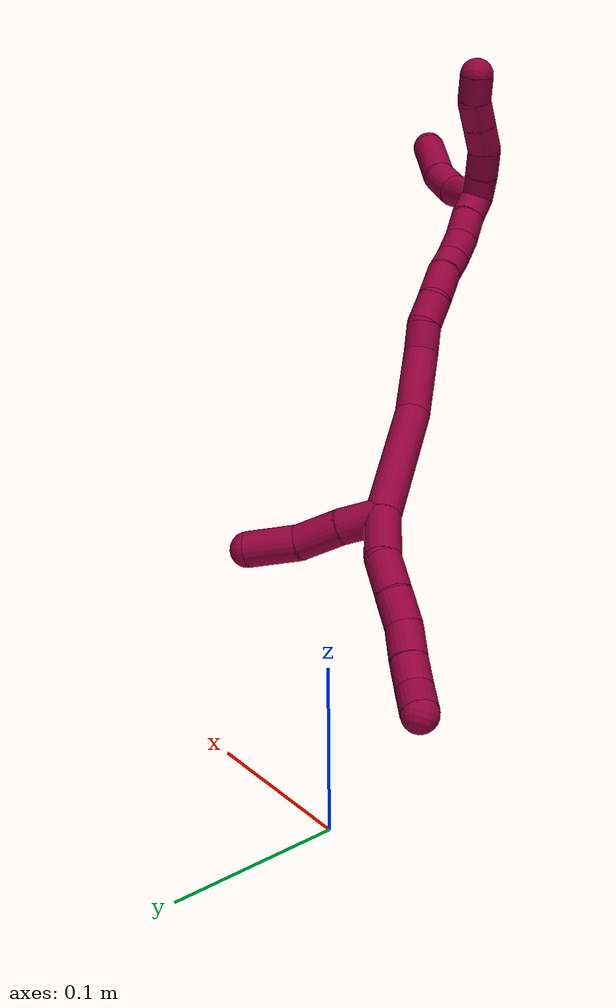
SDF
<sdf version="1.7">
 <world name="default">
  <model name="8">
   <static>0</static>
   <link name="8">
    <collision name="collision-cylinder-e_1_2_8">
     <pose>-0.00708 0.001627 -0.016108 -3.04095 -0.412233 2.66886</pose>
     <geometry><cylinder><radius>0.0125</radius><length>0.03534</length></cylinder></geometry>
     <surface>
      <friction><ode><mu>1.16</mu><mu2>1.16</mu2><slip1>0</slip1><slip2>0</slip2></ode></friction>
      <contact><ode><kp>1e+06</kp><kd>1</kd><max_vel>0</max_vel><min_depth>0.001</min_depth></ode></contact>
     </surface>
    </collision>
    <visual name="visual-cylinder-e_1_2_8">
     <pose>-0.00708 0.001627 -0.016108 -3.04095 -0.412233 2.66886</pose>
     <geometry><cylinder><radius>0.0125</radius><length>0.03534</length></cylinder></geometry>
     <material><ambient>0.584314 0 0.227451 1</ambient></material>
    </visual>
    <collision name="collision-cylinder-e_2_8_9">
     <pose>-0.020189 0.000476 -0.043799 2.90626 -0.468607 -2.2219</pose>
     <geometry><cylinder><radius>0.0125</radius><length>0.026701</length></cylinder></geometry>
     <surface>
      <friction><ode><mu>1.16</mu><mu2>1.16</mu2><slip1>0</slip1><slip2>0</slip2></ode></friction>
      <contact><ode><kp>1e+06</kp><kd>1</kd><max_vel>0</max_vel><min_depth>0.001</min_depth></ode></contact>
     </surface>
    </collision>
    <visual name="visual-cylinder-e_2_8_9">
     <pose>-0.020189 0.000476 -0.043799 2.90626 -0.468607 -2.2219</pose>
     <geometry><cylinder><radius>0.0125</radius><length>0.026701</length></cylinder></geometry>
     <material><ambient>0.584314 0 0.227451 1</ambient></material>
    </visual>
    <collision name="collision-cylinder-e_3_9_10">
     <pose>-0.030769 -0.005724 -0.065817 2.8247 -0.392783 -1.78832</pose>
     <geometry><cylinder><radius>0.0125</radius><length>0.023774</length></cylinder></geometry>
     <surface>
      <friction><ode><mu>1.16</mu><mu2>1.16</mu2><slip1>0</slip1><slip2>0</slip2></ode></friction>
      <contact><ode><kp>1e+06</kp><kd>1</kd><max_vel>0</max_vel><min_depth>0.001</min_depth></ode></contact>
     </surface>
    </collision>
    <visual name="visual-cylinder-e_3_9_10">
     <pose>-0.030769 -0.005724 -0.065817 2.8247 -0.392783 -1.78832</pose>
     <geometry><cylinder><radius>0.0125</radius><length>0.023774</length></cylinder></geometry>
     <material><ambient>0.584314 0 0.227451 1</ambient></material>
    </visual>
    <collision name="collision-cylinder-e_4_10_11">
     <pose>-0.040214 -0.009722 -0.08693 3.08763 -0.4293 -2.89526</pose>
     <geometry><cylinder><radius>0.0125</radius><length>0.023522</length></cylinder></geometry>
     <surface>
      <friction><ode><mu>1.16</mu><mu2>1.16</mu2><slip1>0</slip1><slip2>0</slip2></ode></friction>
      <contact><ode><kp>1e+06</kp><kd>1</kd><max_vel>0</max_vel><min_depth>0.001</min_depth></ode></contact>
     </surface>
    </collision>
    <visual name="visual-cylinder-e_4_10_11">
     <pose>-0.040214 -0.009722 -0.08693 3.08763 -0.4293 -2.89526</pose>
     <geometry><cylinder><radius>0.0125</radius><length>0.023522</length></cylinder></geometry>
     <material><ambient>0.584314 0 0.227451 1</ambient></material>
    </visual>
    <collision name="collision-cylinder-e_5_11_12">
     <pose>-0.049482 -0.011482 -0.106866 3.01448 -0.438143 -2.58475</pose>
     <geometry><cylinder><radius>0.0125</radius><length>0.020611</length></cylinder></geometry>
     <surface>
      <friction><ode><mu>1.16</mu><mu2>1.16</mu2><slip1>0</slip1><slip2>0</slip2></ode></friction>
      <contact><ode><kp>1e+06</kp><kd>1</kd><max_vel>0</max_vel><min_depth>0.001</min_depth></ode></contact>
     </surface>
    </collision>
    <visual name="visual-cylinder-e_5_11_12">
     <pose>-0.049482 -0.011482 -0.106866 3.01448 -0.438143 -2.58475</pose>
     <geometry><cylinder><radius>0.0125</radius><length>0.020611</length></cylinder></geometry>
     <material><ambient>0.584314 0 0.227451 1</ambient></material>
    </visual>
    <collision name="collision-cylinder-e_6_12_6">
     <pose>-0.059892 -0.011622 -0.124058 -3.01093 -0.646322 2.75575</pose>
     <geometry><cylinder><radius>0.0125</radius><length>0.020051</length></cylinder></geometry>
     <surface>
      <friction><ode><mu>1.16</mu><mu2>1.16</mu2><slip1>0</slip1><slip2>0</slip2></ode></friction>
      <contact><ode><kp>1e+06</kp><kd>1</kd><max_vel>0</max_vel><min_depth>0.001</min_depth></ode></contact>
     </surface>
    </collision>
    <visual name="visual-cylinder-e_6_12_6">
     <pose>-0.059892 -0.011622 -0.124058 -3.01093 -0.646322 2.75575</pose>
     <geometry><cylinder><radius>0.0125</radius><length>0.020051</length></cylinder></geometry>
     <material><ambient>0.584314 0 0.227451 1</ambient></material>
    </visual>
    <collision name="collision-cylinder-e_1_2_13">
     <pose>0.01273 0.00645 -0.004902 -2.22069 1.00405 -1.672</pose>
     <geometry><cylinder><radius>0.0125</radius><length>0.030179</length></cylinder></geometry>
     <surface>
      <friction><ode><mu>1.16</mu><mu2>1.16</mu2><slip1>0</slip1><slip2>0</slip2></ode></friction>
      <contact><ode><kp>1e+06</kp><kd>1</kd><max_vel>0</max_vel><min_depth>0.001</min_depth></ode></contact>
     </surface>
    </collision>
    <visual name="visual-cylinder-e_1_2_13">
     <pose>0.01273 0.00645 -0.004902 -2.22069 1.00405 -1.672</pose>
     <geometry><cylinder><radius>0.0125</radius><length>0.030179</length></cylinder></geometry>
     <material><ambient>0.584314 0 0.227451 1</ambient></material>
    </visual>
    <collision name="collision-cylinder-e_2_13_14">
     <pose>0.039249 0.018538 -0.016207 -2.41966 1.01672 -1.95066</pose>
     <geometry><cylinder><radius>0.0125</radius><length>0.032429</length></cylinder></geometry>
     <surface>
      <friction><ode><mu>1.16</mu><mu2>1.16</mu2><slip1>0</slip1><slip2>0</slip2></ode></friction>
      <contact><ode><kp>1e+06</kp><kd>1</kd><max_vel>0</max_vel><min_depth>0.001</min_depth></ode></contact>
     </surface>
    </collision>
    <visual name="visual-cylinder-e_2_13_14">
     <pose>0.039249 0.018538 -0.016207 -2.41966 1.01672 -1.95066</pose>
     <geometry><cylinder><radius>0.0125</radius><length>0.032429</length></cylinder></geometry>
     <material><ambient>0.584314 0 0.227451 1</ambient></material>
    </visual>
    <collision name="collision-cylinder-e_3_14_5">
     <pose>0.068375 0.033853 -0.027154 -2.00977 0.962019 -1.37555</pose>
     <geometry><cylinder><radius>0.0125</radius><length>0.037393</length></cylinder></geometry>
     <surface>
      <friction><ode><mu>1.16</mu><mu2>1.16</mu2><slip1>0</slip1><slip2>0</slip2></ode></friction>
      <contact><ode><kp>1e+06</kp><kd>1</kd><max_vel>0</max_vel><min_depth>0.001</min_depth></ode></contact>
     </surface>
    </collision>
    <visual name="visual-cylinder-e_3_14_5">
     <pose>0.068375 0.033853 -0.027154 -2.00977 0.962019 -1.37555</pose>
     <geometry><cylinder><radius>0.0125</radius><length>0.037393</length></cylinder></geometry>
     <material><ambient>0.584314 0 0.227451 1</ambient></material>
    </visual>
    <collision name="collision-cylinder-e_1_2_15">
     <pose>0.011459 -0.011565 0.044361 0.255029 0.244945 0.03156</pose>
     <geometry><cylinder><radius>0.0125</radius><length>0.094509</length></cylinder></geometry>
     <surface>
      <friction><ode><mu>1.16</mu><mu2>1.16</mu2><slip1>0</slip1><slip2>0</slip2></ode></friction>
      <contact><ode><kp>1e+06</kp><kd>1</kd><max_vel>0</max_vel><min_depth>0.001</min_depth></ode></contact>
     </surface>
    </collision>
    <visual name="visual-cylinder-e_1_2_15">
     <pose>0.011459 -0.011565 0.044361 0.255029 0.244945 0.03156</pose>
     <geometry><cylinder><radius>0.0125</radius><length>0.094509</length></cylinder></geometry>
     <material><ambient>0.584314 0 0.227451 1</ambient></material>
    </visual>
    <collision name="collision-cylinder-e_2_15_16">
     <pose>0.026606 -0.023717 0.114087 0.023107 0.14433 0.00167</pose>
     <geometry><cylinder><radius>0.0125</radius><length>0.051275</length></cylinder></geometry>
     <surface>
      <friction><ode><mu>1.16</mu><mu2>1.16</mu2><slip1>0</slip1><slip2>0</slip2></ode></friction>
      <contact><ode><kp>1e+06</kp><kd>1</kd><max_vel>0</max_vel><min_depth>0.001</min_depth></ode></contact>
     </surface>
    </collision>
    <visual name="visual-cylinder-e_2_15_16">
     <pose>0.026606 -0.023717 0.114087 0.023107 0.14433 0.00167</pose>
     <geometry><cylinder><radius>0.0125</radius><length>0.051275</length></cylinder></geometry>
     <material><ambient>0.584314 0 0.227451 1</ambient></material>
    </visual>
    <collision name="collision-cylinder-e_3_16_17">
     <pose>0.029574 -0.022339 0.149899 -0.185797 -0.067614 0.006302</pose>
     <geometry><cylinder><radius>0.0125</radius><length>0.02131</length></cylinder></geometry>
     <surface>
      <friction><ode><mu>1.16</mu><mu2>1.16</mu2><slip1>0</slip1><slip2>0</slip2></ode></friction>
      <contact><ode><kp>1e+06</kp><kd>1</kd><max_vel>0</max_vel><min_depth>0.001</min_depth></ode></contact>
     </surface>
    </collision>
    <visual name="visual-cylinder-e_3_16_17">
     <pose>0.029574 -0.022339 0.149899 -0.185797 -0.067614 0.006302</pose>
     <geometry><cylinder><radius>0.0125</radius><length>0.02131</length></cylinder></geometry>
     <material><ambient>0.584314 0 0.227451 1</ambient></material>
    </visual>
    <collision name="collision-cylinder-e_4_17_18">
     <pose>0.02842 -0.022087 0.171561 0.151462 -0.0382 -0.002899</pose>
     <geometry><cylinder><radius>0.0125</radius><length>0.022706</length></cylinder></geometry>
     <surface>
      <friction><ode><mu>1.16</mu><mu2>1.16</mu2><slip1>0</slip1><slip2>0</slip2></ode></friction>
      <contact><ode><kp>1e+06</kp><kd>1</kd><max_vel>0</max_vel><min_depth>0.001</min_depth></ode></contact>
     </surface>
    </collision>
    <visual name="visual-cylinder-e_4_17_18">
     <pose>0.02842 -0.022087 0.171561 0.151462 -0.0382 -0.002899</pose>
     <geometry><cylinder><radius>0.0125</radius><length>0.022706</length></cylinder></geometry>
     <material><ambient>0.584314 0 0.227451 1</ambient></material>
    </visual>
    <collision name="collision-cylinder-e_5_18_19">
     <pose>0.030685 -0.027479 0.196639 0.259448 0.185915 0.024323</pose>
     <geometry><cylinder><radius>0.0125</radius><length>0.02919</length></cylinder></geometry>
     <surface>
      <friction><ode><mu>1.16</mu><mu2>1.16</mu2><slip1>0</slip1><slip2>0</slip2></ode></friction>
      <contact><ode><kp>1e+06</kp><kd>1</kd><max_vel>0</max_vel><min_depth>0.001</min_depth></ode></contact>
     </surface>
    </collision>
    <visual name="visual-cylinder-e_5_18_19">
     <pose>0.030685 -0.027479 0.196639 0.259448 0.185915 0.024323</pose>
     <geometry><cylinder><radius>0.0125</radius><length>0.02919</length></cylinder></geometry>
     <material><ambient>0.584314 0 0.227451 1</ambient></material>
    </visual>
    <collision name="collision-cylinder-e_6_19_20">
     <pose>0.035586 -0.035322 0.219393 0.438023 0.220766 0.049329</pose>
     <geometry><cylinder><radius>0.0125</radius><length>0.020123</length></cylinder></geometry>
     <surface>
      <friction><ode><mu>1.16</mu><mu2>1.16</mu2><slip1>0</slip1><slip2>0</slip2></ode></friction>
      <contact><ode><kp>1e+06</kp><kd>1</kd><max_vel>0</max_vel><min_depth>0.001</min_depth></ode></contact>
     </surface>
    </collision>
    <visual name="visual-cylinder-e_6_19_20">
     <pose>0.035586 -0.035322 0.219393 0.438023 0.220766 0.049329</pose>
     <geometry><cylinder><radius>0.0125</radius><length>0.020123</length></cylinder></geometry>
     <material><ambient>0.584314 0 0.227451 1</ambient></material>
    </visual>
    <collision name="collision-cylinder-e_7_20_21">
     <pose>0.037958 -0.041716 0.238186 0.221528 0.016696 0.001857</pose>
     <geometry><cylinder><radius>0.0125</radius><length>0.020303</length></cylinder></geometry>
     <surface>
      <friction><ode><mu>1.16</mu><mu2>1.16</mu2><slip1>0</slip1><slip2>0</slip2></ode></friction>
      <contact><ode><kp>1e+06</kp><kd>1</kd><max_vel>0</max_vel><min_depth>0.001</min_depth></ode></contact>
     </surface>
    </collision>
    <visual name="visual-cylinder-e_7_20_21">
     <pose>0.037958 -0.041716 0.238186 0.221528 0.016696 0.001857</pose>
     <geometry><cylinder><radius>0.0125</radius><length>0.020303</length></cylinder></geometry>
     <material><ambient>0.584314 0 0.227451 1</ambient></material>
    </visual>
    <collision name="collision-cylinder-e_8_21_22">
     <pose>0.038178 -0.044728 0.258332 0.076158 0.004889 0.000186</pose>
     <geometry><cylinder><radius>0.0125</radius><length>0.020549</length></cylinder></geometry>
     <surface>
      <friction><ode><mu>1.16</mu><mu2>1.16</mu2><slip1>0</slip1><slip2>0</slip2></ode></friction>
      <contact><ode><kp>1e+06</kp><kd>1</kd><max_vel>0</max_vel><min_depth>0.001</min_depth></ode></contact>
     </surface>
    </collision>
    <visual name="visual-cylinder-e_8_21_22">
     <pose>0.038178 -0.044728 0.258332 0.076158 0.004889 0.000186</pose>
     <geometry><cylinder><radius>0.0125</radius><length>0.020549</length></cylinder></geometry>
     <material><ambient>0.584314 0 0.227451 1</ambient></material>
    </visual>
    <collision name="collision-cylinder-e_9_22_1">
     <pose>0.037966 -0.047642 0.278361 0.214534 -0.026159 -0.002817</pose>
     <geometry><cylinder><radius>0.0125</radius><length>0.020035</length></cylinder></geometry>
     <surface>
      <friction><ode><mu>1.16</mu><mu2>1.16</mu2><slip1>0</slip1><slip2>0</slip2></ode></friction>
      <contact><ode><kp>1e+06</kp><kd>1</kd><max_vel>0</max_vel><min_depth>0.001</min_depth></ode></contact>
     </surface>
    </collision>
    <visual name="visual-cylinder-e_9_22_1">
     <pose>0.037966 -0.047642 0.278361 0.214534 -0.026159 -0.002817</pose>
     <geometry><cylinder><radius>0.0125</radius><length>0.020035</length></cylinder></geometry>
     <material><ambient>0.584314 0 0.227451 1</ambient></material>
    </visual>
    <collision name="collision-cylinder-e_1_1_23">
     <pose>0.051809 -0.048891 0.295301 -0.122715 1.09829 -0.075152</pose>
     <geometry><cylinder><radius>0.0125</radius><length>0.031681</length></cylinder></geometry>
     <surface>
      <friction><ode><mu>1.16</mu><mu2>1.16</mu2><slip1>0</slip1><slip2>0</slip2></ode></friction>
      <contact><ode><kp>1e+06</kp><kd>1</kd><max_vel>0</max_vel><min_depth>0.001</min_depth></ode></contact>
     </surface>
    </collision>
    <visual name="visual-cylinder-e_1_1_23">
     <pose>0.051809 -0.048891 0.295301 -0.122715 1.09829 -0.075152</pose>
     <geometry><cylinder><radius>0.0125</radius><length>0.031681</length></cylinder></geometry>
     <material><ambient>0.584314 0 0.227451 1</ambient></material>
    </visual>
    <collision name="collision-cylinder-e_2_23_24">
     <pose>0.074461 -0.04559 0.310573 -0.289676 0.789986 -0.121469</pose>
     <geometry><cylinder><radius>0.0125</radius><length>0.024065</length></cylinder></geometry>
     <surface>
      <friction><ode><mu>1.16</mu><mu2>1.16</mu2><slip1>0</slip1><slip2>0</slip2></ode></friction>
      <contact><ode><kp>1e+06</kp><kd>1</kd><max_vel>0</max_vel><min_depth>0.001</min_depth></ode></contact>
     </surface>
    </collision>
    <visual name="visual-cylinder-e_2_23_24">
     <pose>0.074461 -0.04559 0.310573 -0.289676 0.789986 -0.121469</pose>
     <geometry><cylinder><radius>0.0125</radius><length>0.024065</length></cylinder></geometry>
     <material><ambient>0.584314 0 0.227451 1</ambient></material>
    </visual>
    <collision name="collision-cylinder-e_3_24_4">
     <pose>0.095433 -0.043961 0.336981 0.043168 0.596226 0.013266</pose>
     <geometry><cylinder><radius>0.0125</radius><length>0.044254</length></cylinder></geometry>
     <surface>
      <friction><ode><mu>1.16</mu><mu2>1.16</mu2><slip1>0</slip1><slip2>0</slip2></ode></friction>
      <contact><ode><kp>1e+06</kp><kd>1</kd><max_vel>0</max_vel><min_depth>0.001</min_depth></ode></contact>
     </surface>
    </collision>
    <visual name="visual-cylinder-e_3_24_4">
     <pose>0.095433 -0.043961 0.336981 0.043168 0.596226 0.013266</pose>
     <geometry><cylinder><radius>0.0125</radius><length>0.044254</length></cylinder></geometry>
     <material><ambient>0.584314 0 0.227451 1</ambient></material>
    </visual>
    <collision name="collision-cylinder-e_1_1_25">
     <pose>0.031082 -0.044497 0.293466 -0.781273 -0.723773 0.30929</pose>
     <geometry><cylinder><radius>0.0125</radius><length>0.02</length></cylinder></geometry>
     <surface>
      <friction><ode><mu>1.16</mu><mu2>1.16</mu2><slip1>0</slip1><slip2>0</slip2></ode></friction>
      <contact><ode><kp>1e+06</kp><kd>1</kd><max_vel>0</max_vel><min_depth>0.001</min_depth></ode></contact>
     </surface>
    </collision>
    <visual name="visual-cylinder-e_1_1_25">
     <pose>0.031082 -0.044497 0.293466 -0.781273 -0.723773 0.30929</pose>
     <geometry><cylinder><radius>0.0125</radius><length>0.02</length></cylinder></geometry>
     <material><ambient>0.584314 0 0.227451 1</ambient></material>
    </visual>
    <collision name="collision-cylinder-e_2_25_26">
     <pose>0.018677 -0.033535 0.304637 -0.771082 -0.616666 0.257095</pose>
     <geometry><cylinder><radius>0.0125</radius><length>0.02</length></cylinder></geometry>
     <surface>
      <friction><ode><mu>1.16</mu><mu2>1.16</mu2><slip1>0</slip1><slip2>0</slip2></ode></friction>
      <contact><ode><kp>1e+06</kp><kd>1</kd><max_vel>0</max_vel><min_depth>0.001</min_depth></ode></contact>
     </surface>
    </collision>
    <visual name="visual-cylinder-e_2_25_26">
     <pose>0.018677 -0.033535 0.304637 -0.771082 -0.616666 0.257095</pose>
     <geometry><cylinder><radius>0.0125</radius><length>0.02</length></cylinder></geometry>
     <material><ambient>0.584314 0 0.227451 1</ambient></material>
    </visual>
    <collision name="collision-cylinder-e_3_26_27">
     <pose>0.008931 -0.020056 0.315341 -1.01384 -0.40742 0.228432</pose>
     <geometry><cylinder><radius>0.0125</radius><length>0.02</length></cylinder></geometry>
     <surface>
      <friction><ode><mu>1.16</mu><mu2>1.16</mu2><slip1>0</slip1><slip2>0</slip2></ode></friction>
      <contact><ode><kp>1e+06</kp><kd>1</kd><max_vel>0</max_vel><min_depth>0.001</min_depth></ode></contact>
     </surface>
    </collision>
    <visual name="visual-cylinder-e_3_26_27">
     <pose>0.008931 -0.020056 0.315341 -1.01384 -0.40742 0.228432</pose>
     <geometry><cylinder><radius>0.0125</radius><length>0.02</length></cylinder></geometry>
     <material><ambient>0.584314 0 0.227451 1</ambient></material>
    </visual>
    <collision name="collision-cylinder-e_4_27_28">
     <pose>0.001089 -0.00446 0.3251 -1.00951 -0.398425 0.222166</pose>
     <geometry><cylinder><radius>0.0125</radius><length>0.02</length></cylinder></geometry>
     <surface>
      <friction><ode><mu>1.16</mu><mu2>1.16</mu2><slip1>0</slip1><slip2>0</slip2></ode></friction>
      <contact><ode><kp>1e+06</kp><kd>1</kd><max_vel>0</max_vel><min_depth>0.001</min_depth></ode></contact>
     </surface>
    </collision>
    <visual name="visual-cylinder-e_4_27_28">
     <pose>0.001089 -0.00446 0.3251 -1.00951 -0.398425 0.222166</pose>
     <geometry><cylinder><radius>0.0125</radius><length>0.02</length></cylinder></geometry>
     <material><ambient>0.584314 0 0.227451 1</ambient></material>
    </visual>
    <collision name="collision-cylinder-e_5_28_3">
     <pose>-0.008142 0.008896 0.336372 -0.717303 -0.564641 0.216622</pose>
     <geometry><cylinder><radius>0.0125</radius><length>0.02</length></cylinder></geometry>
     <surface>
      <friction><ode><mu>1.16</mu><mu2>1.16</mu2><slip1>0</slip1><slip2>0</slip2></ode></friction>
      <contact><ode><kp>1e+06</kp><kd>1</kd><max_vel>0</max_vel><min_depth>0.001</min_depth></ode></contact>
     </surface>
    </collision>
    <visual name="visual-cylinder-e_5_28_3">
     <pose>-0.008142 0.008896 0.336372 -0.717303 -0.564641 0.216622</pose>
     <geometry><cylinder><radius>0.0125</radius><length>0.02</length></cylinder></geometry>
     <material><ambient>0.584314 0 0.227451 1</ambient></material>
    </visual>
    <collision name="collision-sphere-3">
     <pose>-0.013493 0.014449 0.342739 0 -0 0</pose>
     <geometry><sphere><radius>0.0125</radius></sphere></geometry>
     <surface>
      <friction><ode><mu>1.16</mu><mu2>1.16</mu2><slip1>0</slip1><slip2>0</slip2></ode></friction>
      <contact><ode><kp>1e+06</kp><kd>1</kd><max_vel>0</max_vel><min_depth>0.001</min_depth></ode></contact>
     </surface>
    </collision>
    <visual name="visual-sphere-3">
     <pose>-0.013493 0.014449 0.342739 0 -0 0</pose>
     <geometry><sphere><radius>0.0125</radius></sphere></geometry>
     <material><ambient>0.584314 0 0.227451 1</ambient></material>
    </visual>
    <collision name="collision-sphere-28">
     <pose>-0.002791 0.003343 0.330006 0 -0 0</pose>
     <geometry><sphere><radius>0.0125</radius></sphere></geometry>
     <surface>
      <friction><ode><mu>1.16</mu><mu2>1.16</mu2><slip1>0</slip1><slip2>0</slip2></ode></friction>
      <contact><ode><kp>1e+06</kp><kd>1</kd><max_vel>0</max_vel><min_depth>0.001</min_depth></ode></contact>
     </surface>
    </collision>
    <visual name="visual-sphere-28">
     <pose>-0.002791 0.003343 0.330006 0 -0 0</pose>
     <geometry><sphere><radius>0.0125</radius></sphere></geometry>
     <material><ambient>0.584314 0 0.227451 1</ambient></material>
    </visual>
    <collision name="collision-sphere-27">
     <pose>0.004969 -0.012262 0.320195 0 -0 0</pose>
     <geometry><sphere><radius>0.0125</radius></sphere></geometry>
     <surface>
      <friction><ode><mu>1.16</mu><mu2>1.16</mu2><slip1>0</slip1><slip2>0</slip2></ode></friction>
      <contact><ode><kp>1e+06</kp><kd>1</kd><max_vel>0</max_vel><min_depth>0.001</min_depth></ode></contact>
     </surface>
    </collision>
    <visual name="visual-sphere-27">
     <pose>0.004969 -0.012262 0.320195 0 -0 0</pose>
     <geometry><sphere><radius>0.0125</radius></sphere></geometry>
     <material><ambient>0.584314 0 0.227451 1</ambient></material>
    </visual>
    <collision name="collision-sphere-26">
     <pose>0.012894 -0.02785 0.310488 0 -0 0</pose>
     <geometry><sphere><radius>0.0125</radius></sphere></geometry>
     <surface>
      <friction><ode><mu>1.16</mu><mu2>1.16</mu2><slip1>0</slip1><slip2>0</slip2></ode></friction>
      <contact><ode><kp>1e+06</kp><kd>1</kd><max_vel>0</max_vel><min_depth>0.001</min_depth></ode></contact>
     </surface>
    </collision>
    <visual name="visual-sphere-26">
     <pose>0.012894 -0.02785 0.310488 0 -0 0</pose>
     <geometry><sphere><radius>0.0125</radius></sphere></geometry>
     <material><ambient>0.584314 0 0.227451 1</ambient></material>
    </visual>
    <collision name="collision-sphere-25">
     <pose>0.02446 -0.039221 0.298786 0 -0 0</pose>
     <geometry><sphere><radius>0.0125</radius></sphere></geometry>
     <surface>
      <friction><ode><mu>1.16</mu><mu2>1.16</mu2><slip1>0</slip1><slip2>0</slip2></ode></friction>
      <contact><ode><kp>1e+06</kp><kd>1</kd><max_vel>0</max_vel><min_depth>0.001</min_depth></ode></contact>
     </surface>
    </collision>
    <visual name="visual-sphere-25">
     <pose>0.02446 -0.039221 0.298786 0 -0 0</pose>
     <geometry><sphere><radius>0.0125</radius></sphere></geometry>
     <material><ambient>0.584314 0 0.227451 1</ambient></material>
    </visual>
    <collision name="collision-sphere-4">
     <pose>0.107858 -0.044751 0.355273 0 -0 0</pose>
     <geometry><sphere><radius>0.0125</radius></sphere></geometry>
     <surface>
      <friction><ode><mu>1.16</mu><mu2>1.16</mu2><slip1>0</slip1><slip2>0</slip2></ode></friction>
      <contact><ode><kp>1e+06</kp><kd>1</kd><max_vel>0</max_vel><min_depth>0.001</min_depth></ode></contact>
     </surface>
    </collision>
    <visual name="visual-sphere-4">
     <pose>0.107858 -0.044751 0.355273 0 -0 0</pose>
     <geometry><sphere><radius>0.0125</radius></sphere></geometry>
     <material><ambient>0.584314 0 0.227451 1</ambient></material>
    </visual>
    <collision name="collision-sphere-24">
     <pose>0.083009 -0.043171 0.318689 0 -0 0</pose>
     <geometry><sphere><radius>0.0125</radius></sphere></geometry>
     <surface>
      <friction><ode><mu>1.16</mu><mu2>1.16</mu2><slip1>0</slip1><slip2>0</slip2></ode></friction>
      <contact><ode><kp>1e+06</kp><kd>1</kd><max_vel>0</max_vel><min_depth>0.001</min_depth></ode></contact>
     </surface>
    </collision>
    <visual name="visual-sphere-24">
     <pose>0.083009 -0.043171 0.318689 0 -0 0</pose>
     <geometry><sphere><radius>0.0125</radius></sphere></geometry>
     <material><ambient>0.584314 0 0.227451 1</ambient></material>
    </visual>
    <collision name="collision-sphere-23">
     <pose>0.065914 -0.048009 0.302456 0 -0 0</pose>
     <geometry><sphere><radius>0.0125</radius></sphere></geometry>
     <surface>
      <friction><ode><mu>1.16</mu><mu2>1.16</mu2><slip1>0</slip1><slip2>0</slip2></ode></friction>
      <contact><ode><kp>1e+06</kp><kd>1</kd><max_vel>0</max_vel><min_depth>0.001</min_depth></ode></contact>
     </surface>
    </collision>
    <visual name="visual-sphere-23">
     <pose>0.065914 -0.048009 0.302456 0 -0 0</pose>
     <geometry><sphere><radius>0.0125</radius></sphere></geometry>
     <material><ambient>0.584314 0 0.227451 1</ambient></material>
    </visual>
    <collision name="collision-sphere-1">
     <pose>0.037704 -0.049774 0.288146 0 -0 0</pose>
     <geometry><sphere><radius>0.0125</radius></sphere></geometry>
     <surface>
      <friction><ode><mu>1.16</mu><mu2>1.16</mu2><slip1>0</slip1><slip2>0</slip2></ode></friction>
      <contact><ode><kp>1e+06</kp><kd>1</kd><max_vel>0</max_vel><min_depth>0.001</min_depth></ode></contact>
     </surface>
    </collision>
    <visual name="visual-sphere-1">
     <pose>0.037704 -0.049774 0.288146 0 -0 0</pose>
     <geometry><sphere><radius>0.0125</radius></sphere></geometry>
     <material><ambient>0.584314 0 0.227451 1</ambient></material>
    </visual>
    <collision name="collision-sphere-22">
     <pose>0.038228 -0.04551 0.268577 0 -0 0</pose>
     <geometry><sphere><radius>0.0125</radius></sphere></geometry>
     <surface>
      <friction><ode><mu>1.16</mu><mu2>1.16</mu2><slip1>0</slip1><slip2>0</slip2></ode></friction>
      <contact><ode><kp>1e+06</kp><kd>1</kd><max_vel>0</max_vel><min_depth>0.001</min_depth></ode></contact>
     </surface>
    </collision>
    <visual name="visual-sphere-22">
     <pose>0.038228 -0.04551 0.268577 0 -0 0</pose>
     <geometry><sphere><radius>0.0125</radius></sphere></geometry>
     <material><ambient>0.584314 0 0.227451 1</ambient></material>
    </visual>
    <collision name="collision-sphere-21">
     <pose>0.038128 -0.043947 0.248088 0 -0 0</pose>
     <geometry><sphere><radius>0.0125</radius></sphere></geometry>
     <surface>
      <friction><ode><mu>1.16</mu><mu2>1.16</mu2><slip1>0</slip1><slip2>0</slip2></ode></friction>
      <contact><ode><kp>1e+06</kp><kd>1</kd><max_vel>0</max_vel><min_depth>0.001</min_depth></ode></contact>
     </surface>
    </collision>
    <visual name="visual-sphere-21">
     <pose>0.038128 -0.043947 0.248088 0 -0 0</pose>
     <geometry><sphere><radius>0.0125</radius></sphere></geometry>
     <material><ambient>0.584314 0 0.227451 1</ambient></material>
    </visual>
    <collision name="collision-sphere-12">
     <pose>-0.053854 -0.012665 -0.116122 0 -0 0</pose>
     <geometry><sphere><radius>0.0125</radius></sphere></geometry>
     <surface>
      <friction><ode><mu>1.16</mu><mu2>1.16</mu2><slip1>0</slip1><slip2>0</slip2></ode></friction>
      <contact><ode><kp>1e+06</kp><kd>1</kd><max_vel>0</max_vel><min_depth>0.001</min_depth></ode></contact>
     </surface>
    </collision>
    <visual name="visual-sphere-12">
     <pose>-0.053854 -0.012665 -0.116122 0 -0 0</pose>
     <geometry><sphere><radius>0.0125</radius></sphere></geometry>
     <material><ambient>0.584314 0 0.227451 1</ambient></material>
    </visual>
    <collision name="collision-sphere-11">
     <pose>-0.045109 -0.010299 -0.097609 0 -0 0</pose>
     <geometry><sphere><radius>0.0125</radius></sphere></geometry>
     <surface>
      <friction><ode><mu>1.16</mu><mu2>1.16</mu2><slip1>0</slip1><slip2>0</slip2></ode></friction>
      <contact><ode><kp>1e+06</kp><kd>1</kd><max_vel>0</max_vel><min_depth>0.001</min_depth></ode></contact>
     </surface>
    </collision>
    <visual name="visual-sphere-11">
     <pose>-0.045109 -0.010299 -0.097609 0 -0 0</pose>
     <geometry><sphere><radius>0.0125</radius></sphere></geometry>
     <material><ambient>0.584314 0 0.227451 1</ambient></material>
    </visual>
    <collision name="collision-sphere-10">
     <pose>-0.035319 -0.009146 -0.076252 0 -0 0</pose>
     <geometry><sphere><radius>0.0125</radius></sphere></geometry>
     <surface>
      <friction><ode><mu>1.16</mu><mu2>1.16</mu2><slip1>0</slip1><slip2>0</slip2></ode></friction>
      <contact><ode><kp>1e+06</kp><kd>1</kd><max_vel>0</max_vel><min_depth>0.001</min_depth></ode></contact>
     </surface>
    </collision>
    <visual name="visual-sphere-10">
     <pose>-0.035319 -0.009146 -0.076252 0 -0 0</pose>
     <geometry><sphere><radius>0.0125</radius></sphere></geometry>
     <material><ambient>0.584314 0 0.227451 1</ambient></material>
    </visual>
    <collision name="collision-sphere-9">
     <pose>-0.026219 -0.002301 -0.055382 0 -0 0</pose>
     <geometry><sphere><radius>0.0125</radius></sphere></geometry>
     <surface>
      <friction><ode><mu>1.16</mu><mu2>1.16</mu2><slip1>0</slip1><slip2>0</slip2></ode></friction>
      <contact><ode><kp>1e+06</kp><kd>1</kd><max_vel>0</max_vel><min_depth>0.001</min_depth></ode></contact>
     </surface>
    </collision>
    <visual name="visual-sphere-9">
     <pose>-0.026219 -0.002301 -0.055382 0 -0 0</pose>
     <geometry><sphere><radius>0.0125</radius></sphere></geometry>
     <material><ambient>0.584314 0 0.227451 1</ambient></material>
    </visual>
    <collision name="collision-sphere-2">
     <geometry><sphere><radius>0.0125</radius></sphere></geometry>
     <surface>
      <friction><ode><mu>1.16</mu><mu2>1.16</mu2><slip1>0</slip1><slip2>0</slip2></ode></friction>
      <contact><ode><kp>1e+06</kp><kd>1</kd><max_vel>0</max_vel><min_depth>0.001</min_depth></ode></contact>
     </surface>
    </collision>
    <visual name="visual-sphere-2">
     <geometry><sphere><radius>0.0125</radius></sphere></geometry>
     <material><ambient>0.584314 0 0.227451 1</ambient></material>
    </visual>
    <collision name="collision-sphere-19">
     <pose>0.033382 -0.031158 0.210503 0 -0 0</pose>
     <geometry><sphere><radius>0.0125</radius></sphere></geometry>
     <surface>
      <friction><ode><mu>1.16</mu><mu2>1.16</mu2><slip1>0</slip1><slip2>0</slip2></ode></friction>
      <contact><ode><kp>1e+06</kp><kd>1</kd><max_vel>0</max_vel><min_depth>0.001</min_depth></ode></contact>
     </surface>
    </collision>
    <visual name="visual-sphere-19">
     <pose>0.033382 -0.031158 0.210503 0 -0 0</pose>
     <geometry><sphere><radius>0.0125</radius></sphere></geometry>
     <material><ambient>0.584314 0 0.227451 1</ambient></material>
    </visual>
    <collision name="collision-sphere-8">
     <pose>-0.014159 0.003253 -0.032216 0 -0 0</pose>
     <geometry><sphere><radius>0.0125</radius></sphere></geometry>
     <surface>
      <friction><ode><mu>1.16</mu><mu2>1.16</mu2><slip1>0</slip1><slip2>0</slip2></ode></friction>
      <contact><ode><kp>1e+06</kp><kd>1</kd><max_vel>0</max_vel><min_depth>0.001</min_depth></ode></contact>
     </surface>
    </collision>
    <visual name="visual-sphere-8">
     <pose>-0.014159 0.003253 -0.032216 0 -0 0</pose>
     <geometry><sphere><radius>0.0125</radius></sphere></geometry>
     <material><ambient>0.584314 0 0.227451 1</ambient></material>
    </visual>
    <collision name="collision-sphere-6">
     <pose>-0.06593 -0.01058 -0.131993 0 -0 0</pose>
     <geometry><sphere><radius>0.0125</radius></sphere></geometry>
     <surface>
      <friction><ode><mu>1.16</mu><mu2>1.16</mu2><slip1>0</slip1><slip2>0</slip2></ode></friction>
      <contact><ode><kp>1e+06</kp><kd>1</kd><max_vel>0</max_vel><min_depth>0.001</min_depth></ode></contact>
     </surface>
    </collision>
    <visual name="visual-sphere-6">
     <pose>-0.06593 -0.01058 -0.131993 0 -0 0</pose>
     <geometry><sphere><radius>0.0125</radius></sphere></geometry>
     <material><ambient>0.584314 0 0.227451 1</ambient></material>
    </visual>
    <collision name="collision-sphere-13">
     <pose>0.02546 0.0129 -0.009804 0 -0 0</pose>
     <geometry><sphere><radius>0.0125</radius></sphere></geometry>
     <surface>
      <friction><ode><mu>1.16</mu><mu2>1.16</mu2><slip1>0</slip1><slip2>0</slip2></ode></friction>
      <contact><ode><kp>1e+06</kp><kd>1</kd><max_vel>0</max_vel><min_depth>0.001</min_depth></ode></contact>
     </surface>
    </collision>
    <visual name="visual-sphere-13">
     <pose>0.02546 0.0129 -0.009804 0 -0 0</pose>
     <geometry><sphere><radius>0.0125</radius></sphere></geometry>
     <material><ambient>0.584314 0 0.227451 1</ambient></material>
    </visual>
    <collision name="collision-sphere-14">
     <pose>0.053037 0.024175 -0.02261 0 -0 0</pose>
     <geometry><sphere><radius>0.0125</radius></sphere></geometry>
     <surface>
      <friction><ode><mu>1.16</mu><mu2>1.16</mu2><slip1>0</slip1><slip2>0</slip2></ode></friction>
      <contact><ode><kp>1e+06</kp><kd>1</kd><max_vel>0</max_vel><min_depth>0.001</min_depth></ode></contact>
     </surface>
    </collision>
    <visual name="visual-sphere-14">
     <pose>0.053037 0.024175 -0.02261 0 -0 0</pose>
     <geometry><sphere><radius>0.0125</radius></sphere></geometry>
     <material><ambient>0.584314 0 0.227451 1</ambient></material>
    </visual>
    <collision name="collision-sphere-5">
     <pose>0.083712 0.043532 -0.031698 0 -0 0</pose>
     <geometry><sphere><radius>0.0125</radius></sphere></geometry>
     <surface>
      <friction><ode><mu>1.16</mu><mu2>1.16</mu2><slip1>0</slip1><slip2>0</slip2></ode></friction>
      <contact><ode><kp>1e+06</kp><kd>1</kd><max_vel>0</max_vel><min_depth>0.001</min_depth></ode></contact>
     </surface>
    </collision>
    <visual name="visual-sphere-5">
     <pose>0.083712 0.043532 -0.031698 0 -0 0</pose>
     <geometry><sphere><radius>0.0125</radius></sphere></geometry>
     <material><ambient>0.584314 0 0.227451 1</ambient></material>
    </visual>
    <collision name="collision-sphere-15">
     <pose>0.022919 -0.023131 0.088723 0 -0 0</pose>
     <geometry><sphere><radius>0.0125</radius></sphere></geometry>
     <surface>
      <friction><ode><mu>1.16</mu><mu2>1.16</mu2><slip1>0</slip1><slip2>0</slip2></ode></friction>
      <contact><ode><kp>1e+06</kp><kd>1</kd><max_vel>0</max_vel><min_depth>0.001</min_depth></ode></contact>
     </surface>
    </collision>
    <visual name="visual-sphere-15">
     <pose>0.022919 -0.023131 0.088723 0 -0 0</pose>
     <geometry><sphere><radius>0.0125</radius></sphere></geometry>
     <material><ambient>0.584314 0 0.227451 1</ambient></material>
    </visual>
    <collision name="collision-sphere-16">
     <pose>0.030294 -0.024303 0.139451 0 -0 0</pose>
     <geometry><sphere><radius>0.0125</radius></sphere></geometry>
     <surface>
      <friction><ode><mu>1.16</mu><mu2>1.16</mu2><slip1>0</slip1><slip2>0</slip2></ode></friction>
      <contact><ode><kp>1e+06</kp><kd>1</kd><max_vel>0</max_vel><min_depth>0.001</min_depth></ode></contact>
     </surface>
    </collision>
    <visual name="visual-sphere-16">
     <pose>0.030294 -0.024303 0.139451 0 -0 0</pose>
     <geometry><sphere><radius>0.0125</radius></sphere></geometry>
     <material><ambient>0.584314 0 0.227451 1</ambient></material>
    </visual>
    <collision name="collision-sphere-17">
     <pose>0.028854 -0.020375 0.160347 0 -0 0</pose>
     <geometry><sphere><radius>0.0125</radius></sphere></geometry>
     <surface>
      <friction><ode><mu>1.16</mu><mu2>1.16</mu2><slip1>0</slip1><slip2>0</slip2></ode></friction>
      <contact><ode><kp>1e+06</kp><kd>1</kd><max_vel>0</max_vel><min_depth>0.001</min_depth></ode></contact>
     </surface>
    </collision>
    <visual name="visual-sphere-17">
     <pose>0.028854 -0.020375 0.160347 0 -0 0</pose>
     <geometry><sphere><radius>0.0125</radius></sphere></geometry>
     <material><ambient>0.584314 0 0.227451 1</ambient></material>
    </visual>
    <collision name="collision-sphere-18">
     <pose>0.027987 -0.023799 0.182776 0 -0 0</pose>
     <geometry><sphere><radius>0.0125</radius></sphere></geometry>
     <surface>
      <friction><ode><mu>1.16</mu><mu2>1.16</mu2><slip1>0</slip1><slip2>0</slip2></ode></friction>
      <contact><ode><kp>1e+06</kp><kd>1</kd><max_vel>0</max_vel><min_depth>0.001</min_depth></ode></contact>
     </surface>
    </collision>
    <visual name="visual-sphere-18">
     <pose>0.027987 -0.023799 0.182776 0 -0 0</pose>
     <geometry><sphere><radius>0.0125</radius></sphere></geometry>
     <material><ambient>0.584314 0 0.227451 1</ambient></material>
    </visual>
    <collision name="collision-sphere-20">
     <pose>0.037789 -0.039486 0.228284 0 -0 0</pose>
     <geometry><sphere><radius>0.0125</radius></sphere></geometry>
     <surface>
      <friction><ode><mu>1.16</mu><mu2>1.16</mu2><slip1>0</slip1><slip2>0</slip2></ode></friction>
      <contact><ode><kp>1e+06</kp><kd>1</kd><max_vel>0</max_vel><min_depth>0.001</min_depth></ode></contact>
     </surface>
    </collision>
    <visual name="visual-sphere-20">
     <pose>0.037789 -0.039486 0.228284 0 -0 0</pose>
     <geometry><sphere><radius>0.0125</radius></sphere></geometry>
     <material><ambient>0.584314 0 0.227451 1</ambient></material>
    </visual>
    <inertial>
     <pose>0.021155 -0.016916 0.126028 0 -0 0</pose>
     <mass>0.75</mass>
     <inertia><ixx>0.000104</ixx><ixy>0</ixy><ixz>0</ixz><iyy>0.000137</iyy><iyz>0</iyz><izz>-2e-06</izz></inertia>
    </inertial>
   </link>
   <pose>0.150645 -0.161 0.09375 0.642453 0.412696 0.084163</pose>
  </model>
 </world>
</sdf>
